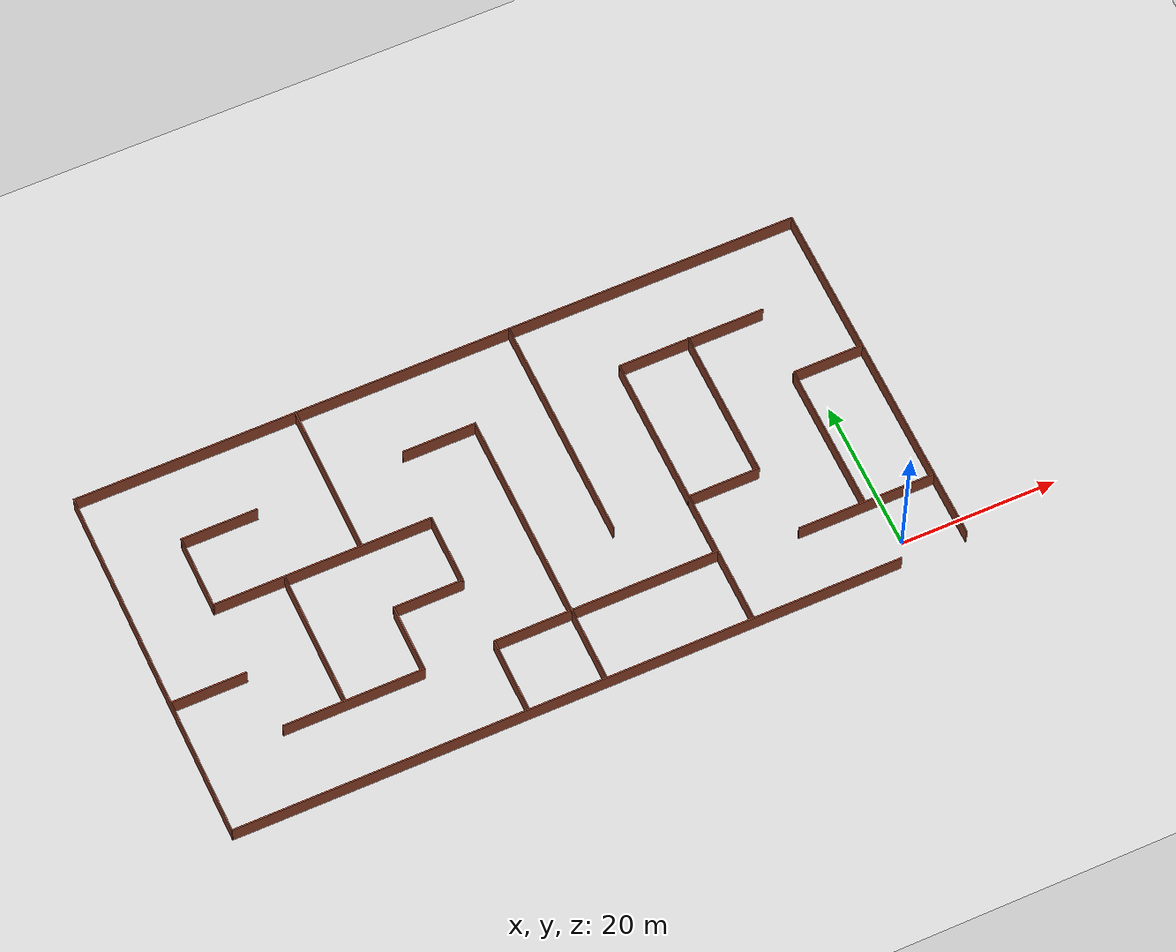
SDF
<sdf version="1.4">
 <world name="default">
  <light name="sun" type="directional">
   <pose>0 0 10 0 -0 0</pose>
   <diffuse>0.8 0.8 0.8 1</diffuse>
   <specular>0.2 0.2 0.2 1</specular>
   <attenuation>
    <range>1000</range>
    <constant>0.9</constant>
    <linear>0.01</linear>
    <quadratic>0.001</quadratic>
   </attenuation>
   <direction>-0.5 0.1 -0.9</direction>
  </light>
  <model name="ground_plane">
   <static>1</static>
   <link name="link">
    <collision name="collision">
     <geometry><plane><normal>0 0 1</normal><size>100 100</size></plane></geometry>
     <surface><friction><ode><mu>100</mu><mu2>50</mu2></ode></friction></surface>
    </collision>
    <visual name="visual">
     <cast_shadows>0</cast_shadows>
     <geometry><plane><normal>0 0 1</normal><size>100 100</size></plane></geometry>
     <material>
      <script><uri>file://media/materials/scripts/gazebo.material</uri><name>Gazebo/Grey</name></script>
     </material>
    </visual>
    <velocity_decay><linear>0</linear><angular>0</angular></velocity_decay>
   </link>
  </model>
  <physics type="ode">
   <max_step_size>0.001</max_step_size>
   <real_time_factor>1</real_time_factor>
   <real_time_update_rate>1000</real_time_update_rate>
   <gravity>0 0 -9.8</gravity>
  </physics>
  <scene><ambient>0.4 0.4 0.4 1</ambient><background>0.7 0.7 0.7 1</background><shadows>1</shadows></scene>
  <spherical_coordinates>
   <surface_model>EARTH_WGS84</surface_model>
   <latitude_deg>0</latitude_deg>
   <longitude_deg>0</longitude_deg>
   <elevation>0</elevation>
   <heading_deg>0</heading_deg>
  </spherical_coordinates>
  <model name="EasyMaze">
   <pose>-40 21 0 0 -0 0</pose>
   <link name="Wall_0">
    <collision name="Wall_0_Collision">
     <geometry><box><size>93.7757 0.15 2.5</size></box></geometry>
     <pose>0 0 1.25 0 -0 0</pose>
    </collision>
    <visual name="Wall_0_Visual">
     <pose>0 0 1.25 0 -0 0</pose>
     <geometry><box><size>93.7757 0.15 2.5</size></box></geometry>
     <material>
      <script><uri>file://media/materials/scripts/gazebo.material</uri><name>Gazebo/Bricks</name></script>
      <ambient>1 1 1 1</ambient>
     </material>
    </visual>
    <pose>0.036664 23.8 0 0 -0 0</pose>
    <velocity_decay><linear>0</linear><angular>0</angular></velocity_decay>
   </link>
   <link name="Wall_1">
    <collision name="Wall_1_Collision">
     <geometry><box><size>47.75 0.15 2.5</size></box></geometry>
     <pose>0 0 1.25 0 -0 0</pose>
    </collision>
    <visual name="Wall_1_Visual">
     <pose>0 0 1.25 0 -0 0</pose>
     <geometry><box><size>47.75 0.15 2.5</size></box></geometry>
     <material>
      <script><uri>file://media/materials/scripts/gazebo.material</uri><name>Gazebo/Bricks</name></script>
      <ambient>1 1 1 1</ambient>
     </material>
    </visual>
    <pose>46.8495 0 0 0 0 -1.5708</pose>
    <velocity_decay><linear>0</linear><angular>0</angular></velocity_decay>
   </link>
   <link name="Wall_10">
    <collision name="Wall_10_Collision">
     <geometry><box><size>9.25 0.15 2.5</size></box></geometry>
     <pose>0 0 1.25 0 -0 0</pose>
    </collision>
    <visual name="Wall_10_Visual">
     <pose>0 0 1.25 0 -0 0</pose>
     <geometry><box><size>9.25 0.15 2.5</size></box></geometry>
     <material>
      <script><uri>file://media/materials/scripts/gazebo.material</uri><name>Gazebo/Bricks</name></script>
      <ambient>1 1 1 1</ambient>
     </material>
    </visual>
    <pose>-9.55406 -0.512055 0 0 0 -1.5708</pose>
    <velocity_decay><linear>0</linear><angular>0</angular></velocity_decay>
   </link>
   <link name="Wall_11">
    <collision name="Wall_11_Collision">
     <geometry><box><size>9 0.15 2.5</size></box></geometry>
     <pose>0 0 1.25 0 -0 0</pose>
    </collision>
    <visual name="Wall_11_Visual">
     <pose>0 0 1.25 0 -0 0</pose>
     <geometry><box><size>9 0.15 2.5</size></box></geometry>
     <material>
      <script><uri>file://media/materials/scripts/gazebo.material</uri><name>Gazebo/Bricks</name></script>
      <ambient>1 1 1 1</ambient>
     </material>
    </visual>
    <pose>-13.9791 -5.06206 0 0 -0 3.14159</pose>
    <velocity_decay><linear>0</linear><angular>0</angular></velocity_decay>
   </link>
   <link name="Wall_12">
    <collision name="Wall_12_Collision">
     <geometry><box><size>9 0.15 2.5</size></box></geometry>
     <pose>0 0 1.25 0 -0 0</pose>
    </collision>
    <visual name="Wall_12_Visual">
     <pose>0 0 1.25 0 -0 0</pose>
     <geometry><box><size>9 0.15 2.5</size></box></geometry>
     <material>
      <script><uri>file://media/materials/scripts/gazebo.material</uri><name>Gazebo/Bricks</name></script>
      <ambient>1 1 1 1</ambient>
     </material>
    </visual>
    <pose>-18.4041 -9.48706 0 0 0 -1.5708</pose>
    <velocity_decay><linear>0</linear><angular>0</angular></velocity_decay>
   </link>
   <link name="Wall_13">
    <collision name="Wall_13_Collision">
     <geometry><box><size>18 0.15 2.5</size></box></geometry>
     <pose>0 0 1.25 0 -0 0</pose>
    </collision>
    <visual name="Wall_13_Visual">
     <pose>0 0 1.25 0 -0 0</pose>
     <geometry><box><size>18 0.15 2.5</size></box></geometry>
     <material>
      <script><uri>file://media/materials/scripts/gazebo.material</uri><name>Gazebo/Bricks</name></script>
      <ambient>1 1 1 1</ambient>
     </material>
    </visual>
    <pose>-27.3291 -13.9121 0 0 -0 3.14159</pose>
    <velocity_decay><linear>0</linear><angular>0</angular></velocity_decay>
   </link>
   <link name="Wall_15">
    <collision name="Wall_15_Collision">
     <geometry><box><size>18 0.15 2.5</size></box></geometry>
     <pose>0 0 1.25 0 -0 0</pose>
    </collision>
    <visual name="Wall_15_Visual">
     <pose>0 0 1.25 0 -0 0</pose>
     <geometry><box><size>18 0.15 2.5</size></box></geometry>
     <material>
      <script><uri>file://media/materials/scripts/gazebo.material</uri><name>Gazebo/Bricks</name></script>
      <ambient>1 1 1 1</ambient>
     </material>
    </visual>
    <pose>-28.3578 -4.8854 0 0 0 -1.5708</pose>
    <velocity_decay><linear>0</linear><angular>0</angular></velocity_decay>
   </link>
   <link name="Wall_17">
    <collision name="Wall_17_Collision">
     <geometry><box><size>9.5 0.15 2.5</size></box></geometry>
     <pose>0 0 1.25 0 -0 0</pose>
    </collision>
    <visual name="Wall_17_Visual">
     <pose>0 0 1.25 0 -0 0</pose>
     <geometry><box><size>9.5 0.15 2.5</size></box></geometry>
     <material>
      <script><uri>file://media/materials/scripts/gazebo.material</uri><name>Gazebo/Bricks</name></script>
      <ambient>1 1 1 1</ambient>
     </material>
    </visual>
    <pose>-42.0796 -5.74334 0 0 -0 0</pose>
    <velocity_decay><linear>0</linear><angular>0</angular></velocity_decay>
   </link>
   <link name="Wall_19">
    <collision name="Wall_19_Collision">
     <geometry><box><size>9.75 0.15 2.5</size></box></geometry>
     <pose>0 0 1.25 0 -0 0</pose>
    </collision>
    <visual name="Wall_19_Visual">
     <pose>0 0 1.25 0 -0 0</pose>
     <geometry><box><size>9.75 0.15 2.5</size></box></geometry>
     <material>
      <script><uri>file://media/materials/scripts/gazebo.material</uri><name>Gazebo/Bricks</name></script>
      <ambient>1 1 1 1</ambient>
     </material>
    </visual>
    <pose>-9.55144 -18.8483 0 0 0 -1.5708</pose>
    <velocity_decay><linear>0</linear><angular>0</angular></velocity_decay>
   </link>
   <link name="Wall_22">
    <collision name="Wall_22_Collision">
     <geometry><box><size>37.5 0.15 2.5</size></box></geometry>
     <pose>0 0 1.25 0 -0 0</pose>
    </collision>
    <visual name="Wall_22_Visual">
     <pose>0 0 1.25 0 -0 0</pose>
     <geometry><box><size>37.5 0.15 2.5</size></box></geometry>
     <material>
      <script><uri>file://media/materials/scripts/gazebo.material</uri><name>Gazebo/Bricks</name></script>
      <ambient>1 1 1 1</ambient>
     </material>
    </visual>
    <pose>0.352554 -5.08927 0 0 0 -1.5708</pose>
    <velocity_decay><linear>0</linear><angular>0</angular></velocity_decay>
   </link>
   <link name="Wall_24">
    <collision name="Wall_24_Collision">
     <geometry><box><size>30 0.15 2.5</size></box></geometry>
     <pose>0 0 1.25 0 -0 0</pose>
    </collision>
    <visual name="Wall_24_Visual">
     <pose>0 0 1.25 0 -0 0</pose>
     <geometry><box><size>30 0.15 2.5</size></box></geometry>
     <material>
      <script><uri>file://media/materials/scripts/gazebo.material</uri><name>Gazebo/Bricks</name></script>
      <ambient>1 1 1 1</ambient>
     </material>
    </visual>
    <pose>9.35586 8.86223 0 0 0 -1.5708</pose>
    <velocity_decay><linear>0</linear><angular>0</angular></velocity_decay>
   </link>
   <link name="Wall_26">
    <collision name="Wall_26_Collision">
     <geometry><box><size>28.75 0.15 2.5</size></box></geometry>
     <pose>0 0 1.25 0 -0 0</pose>
    </collision>
    <visual name="Wall_26_Visual">
     <pose>0 0 1.25 0 -0 0</pose>
     <geometry><box><size>28.75 0.15 2.5</size></box></geometry>
     <material>
      <script><uri>file://media/materials/scripts/gazebo.material</uri><name>Gazebo/Bricks</name></script>
      <ambient>1 1 1 1</ambient>
     </material>
    </visual>
    <pose>4.76053 -13.997 0 0 -0 0</pose>
    <velocity_decay><linear>0</linear><angular>0</angular></velocity_decay>
   </link>
   <link name="Wall_28">
    <collision name="Wall_28_Collision">
     <geometry><box><size>19 0.15 2.5</size></box></geometry>
     <pose>0 0 1.25 0 -0 0</pose>
    </collision>
    <visual name="Wall_28_Visual">
     <pose>0 0 1.25 0 -0 0</pose>
     <geometry><box><size>19 0.15 2.5</size></box></geometry>
     <material>
      <script><uri>file://media/materials/scripts/gazebo.material</uri><name>Gazebo/Bricks</name></script>
      <ambient>1 1 1 1</ambient>
     </material>
    </visual>
    <pose>28.6447 13.603 0 0 -0 0</pose>
    <velocity_decay><linear>0</linear><angular>0</angular></velocity_decay>
   </link>
   <link name="Wall_30">
    <collision name="Wall_30_Collision">
     <geometry><box><size>19.75 0.15 2.5</size></box></geometry>
     <pose>0 0 1.25 0 -0 0</pose>
    </collision>
    <visual name="Wall_30_Visual">
     <pose>0 0 1.25 0 -0 0</pose>
     <geometry><box><size>19.75 0.15 2.5</size></box></geometry>
     <material>
      <script><uri>file://media/materials/scripts/gazebo.material</uri><name>Gazebo/Bricks</name></script>
      <ambient>1 1 1 1</ambient>
     </material>
    </visual>
    <pose>28.3187 3.86897 0 0 0 -1.5708</pose>
    <velocity_decay><linear>0</linear><angular>0</angular></velocity_decay>
   </link>
   <link name="Wall_31">
    <collision name="Wall_31_Collision">
     <geometry><box><size>9.25 0.15 2.5</size></box></geometry>
     <pose>0 0 1.25 0 -0 0</pose>
    </collision>
    <visual name="Wall_31_Visual">
     <pose>0 0 1.25 0 -0 0</pose>
     <geometry><box><size>9.25 0.15 2.5</size></box></geometry>
     <material>
      <script><uri>file://media/materials/scripts/gazebo.material</uri><name>Gazebo/Bricks</name></script>
      <ambient>1 1 1 1</ambient>
     </material>
    </visual>
    <pose>23.7687 -5.93103 0 0 -0 3.14159</pose>
    <velocity_decay><linear>0</linear><angular>0</angular></velocity_decay>
   </link>
   <link name="Wall_33">
    <collision name="Wall_33_Collision">
     <geometry><box><size>9.25 0.15 2.5</size></box></geometry>
     <pose>0 0 1.25 0 -0 0</pose>
    </collision>
    <visual name="Wall_33_Visual">
     <pose>0 0 1.25 0 -0 0</pose>
     <geometry><box><size>9.25 0.15 2.5</size></box></geometry>
     <material>
      <script><uri>file://media/materials/scripts/gazebo.material</uri><name>Gazebo/Bricks</name></script>
      <ambient>1 1 1 1</ambient>
     </material>
    </visual>
    <pose>42.3071 4.18752 0 0 -0 3.14159</pose>
    <velocity_decay><linear>0</linear><angular>0</angular></velocity_decay>
   </link>
   <link name="Wall_34">
    <collision name="Wall_34_Collision">
     <geometry><box><size>19.5 0.15 2.5</size></box></geometry>
     <pose>0 0 1.25 0 -0 0</pose>
    </collision>
    <visual name="Wall_34_Visual">
     <pose>0 0 1.25 0 -0 0</pose>
     <geometry><box><size>19.5 0.15 2.5</size></box></geometry>
     <material>
      <script><uri>file://media/materials/scripts/gazebo.material</uri><name>Gazebo/Bricks</name></script>
      <ambient>1 1 1 1</ambient>
     </material>
    </visual>
    <pose>37.7571 -5.48748 0 0 0 -1.5708</pose>
    <velocity_decay><linear>0</linear><angular>0</angular></velocity_decay>
   </link>
   <link name="Wall_37">
    <collision name="Wall_37_Collision">
     <geometry><box><size>17.75 0.15 2.5</size></box></geometry>
     <pose>0 0 1.25 0 -0 0</pose>
    </collision>
    <visual name="Wall_37_Visual">
     <pose>0 0 1.25 0 -0 0</pose>
     <geometry><box><size>17.75 0.15 2.5</size></box></geometry>
     <material>
      <script><uri>file://media/materials/scripts/gazebo.material</uri><name>Gazebo/Bricks</name></script>
      <ambient>1 1 1 1</ambient>
     </material>
    </visual>
    <pose>37.9678 -15.2323 0 0 -0 0</pose>
    <velocity_decay><linear>0</linear><angular>0</angular></velocity_decay>
   </link>
   <link name="Wall_39">
    <collision name="Wall_39_Collision">
     <geometry><box><size>37.5 0.15 2.5</size></box></geometry>
     <pose>0 0 1.25 0 -0 0</pose>
    </collision>
    <visual name="Wall_39_Visual">
     <pose>0 0 1.25 0 -0 0</pose>
     <geometry><box><size>37.5 0.15 2.5</size></box></geometry>
     <material>
      <script><uri>file://media/materials/scripts/gazebo.material</uri><name>Gazebo/Bricks</name></script>
      <ambient>1 1 1 1</ambient>
     </material>
    </visual>
    <pose>19.2197 -5.07204 0 0 0 -1.5708</pose>
    <velocity_decay><linear>0</linear><angular>0</angular></velocity_decay>
   </link>
   <link name="Wall_41">
    <collision name="Wall_41_Collision">
     <geometry><box><size>85.25 0.15 2.5</size></box></geometry>
     <pose>0 0 1.25 0 -0 0</pose>
    </collision>
    <visual name="Wall_41_Visual">
     <pose>0 0 1.25 0 -0 0</pose>
     <geometry><box><size>85.25 0.15 2.5</size></box></geometry>
     <material>
      <script><uri>file://media/materials/scripts/gazebo.material</uri><name>Gazebo/Bricks</name></script>
      <ambient>1 1 1 1</ambient>
     </material>
    </visual>
    <pose>-4.23942 -23.8 0 0 -0 0</pose>
    <velocity_decay><linear>0</linear><angular>0</angular></velocity_decay>
   </link>
   <link name="Wall_43">
    <collision name="Wall_43_Collision">
     <geometry><box><size>47.75 0.15 2.5</size></box></geometry>
     <pose>0 0 1.25 0 -0 0</pose>
    </collision>
    <visual name="Wall_43_Visual">
     <pose>0 0 1.25 0 -0 0</pose>
     <geometry><box><size>47.75 0.15 2.5</size></box></geometry>
     <material>
      <script><uri>file://media/materials/scripts/gazebo.material</uri><name>Gazebo/Bricks</name></script>
      <ambient>1 1 1 1</ambient>
     </material>
    </visual>
    <pose>-46.8571 0 0 0 0 -1.5708</pose>
    <velocity_decay><linear>0</linear><angular>0</angular></velocity_decay>
   </link>
   <link name="Wall_45">
    <collision name="Wall_45_Collision">
     <geometry><box><size>9.5 0.15 2.5</size></box></geometry>
     <pose>0 0 1.25 0 -0 0</pose>
    </collision>
    <visual name="Wall_45_Visual">
     <pose>0 0 1.25 0 -0 0</pose>
     <geometry><box><size>9.5 0.15 2.5</size></box></geometry>
     <material>
      <script><uri>file://media/materials/scripts/gazebo.material</uri><name>Gazebo/Bricks</name></script>
      <ambient>1 1 1 1</ambient>
     </material>
    </visual>
    <pose>-4.32245 13.5857 0 0 -0 0</pose>
    <velocity_decay><linear>0</linear><angular>0</angular></velocity_decay>
   </link>
   <link name="Wall_5">
    <collision name="Wall_5_Collision">
     <geometry><box><size>19.75 0.15 2.5</size></box></geometry>
     <pose>0 0 1.25 0 -0 0</pose>
    </collision>
    <visual name="Wall_5_Visual">
     <pose>0 0 1.25 0 -0 0</pose>
     <geometry><box><size>19.75 0.15 2.5</size></box></geometry>
     <material>
      <script><uri>file://media/materials/scripts/gazebo.material</uri><name>Gazebo/Bricks</name></script>
      <ambient>1 1 1 1</ambient>
     </material>
    </visual>
    <pose>-18.4518 13.99 0 0 0 -1.5708</pose>
    <velocity_decay><linear>0</linear><angular>0</angular></velocity_decay>
   </link>
   <link name="Wall_7">
    <collision name="Wall_7_Collision">
     <geometry><box><size>9.75 0.15 2.5</size></box></geometry>
     <pose>0 0 1.25 0 -0 0</pose>
    </collision>
    <visual name="Wall_7_Visual">
     <pose>0 0 1.25 0 -0 0</pose>
     <geometry><box><size>9.75 0.15 2.5</size></box></geometry>
     <material>
      <script><uri>file://media/materials/scripts/gazebo.material</uri><name>Gazebo/Bricks</name></script>
      <ambient>1 1 1 1</ambient>
     </material>
    </visual>
    <pose>-32.6041 13.6379 0 0 -0 3.14159</pose>
    <velocity_decay><linear>0</linear><angular>0</angular></velocity_decay>
   </link>
   <link name="Wall_8">
    <collision name="Wall_8_Collision">
     <geometry><box><size>9.75 0.15 2.5</size></box></geometry>
     <pose>0 0 1.25 0 -0 0</pose>
    </collision>
    <visual name="Wall_8_Visual">
     <pose>0 0 1.25 0 -0 0</pose>
     <geometry><box><size>9.75 0.15 2.5</size></box></geometry>
     <material>
      <script><uri>file://media/materials/scripts/gazebo.material</uri><name>Gazebo/Bricks</name></script>
      <ambient>1 1 1 1</ambient>
     </material>
    </visual>
    <pose>-37.4041 8.83794 0 0 0 -1.5708</pose>
    <velocity_decay><linear>0</linear><angular>0</angular></velocity_decay>
   </link>
   <link name="Wall_9">
    <collision name="Wall_9_Collision">
     <geometry><box><size>28 0.15 2.5</size></box></geometry>
     <pose>0 0 1.25 0 -0 0</pose>
    </collision>
    <visual name="Wall_9_Visual">
     <pose>0 0 1.25 0 -0 0</pose>
     <geometry><box><size>28 0.15 2.5</size></box></geometry>
     <material>
      <script><uri>file://media/materials/scripts/gazebo.material</uri><name>Gazebo/Bricks</name></script>
      <ambient>1 1 1 1</ambient>
     </material>
    </visual>
    <pose>-23.4791 4.03794 0 0 -0 0</pose>
    <velocity_decay><linear>0</linear><angular>0</angular></velocity_decay>
   </link>
   <static>1</static>
  </model>
 </world>
</sdf>
